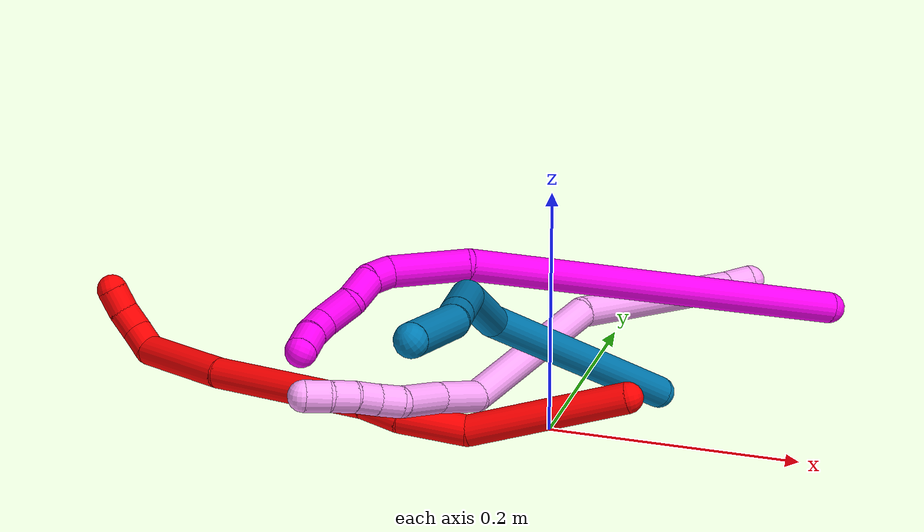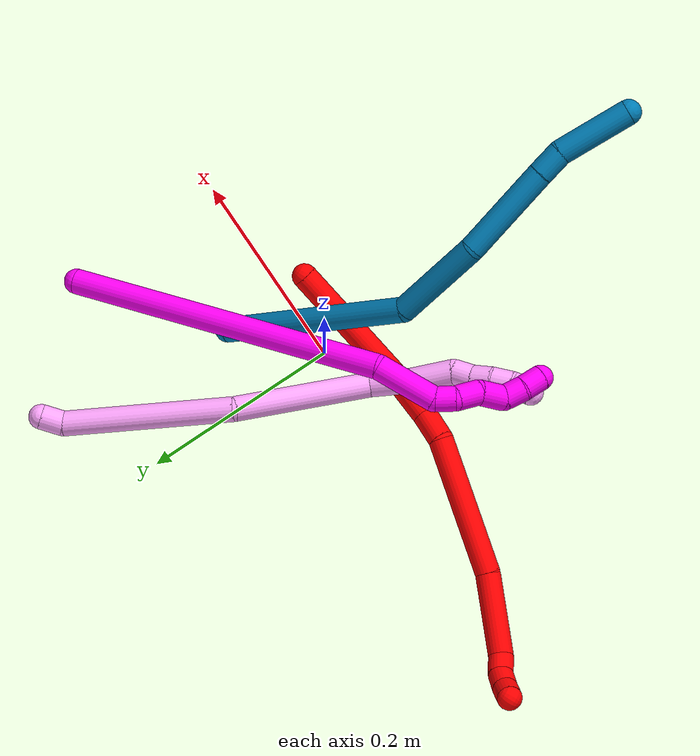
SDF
<sdf version="1.7">
 <world name="default">
  <model name="2">
   <static>0</static>
   <link name="2">
    <collision name="collision-cylinder-e_1_1_4">
     <pose>-0.016483 -0.006897 0.062198 0.110441 -0.257541 -0.014315</pose>
     <geometry><cylinder><radius>0.0125</radius><length>0.129426</length></cylinder></geometry>
     <surface>
      <friction><ode><mu>1.16</mu><mu2>1.16</mu2><slip1>0</slip1><slip2>0</slip2></ode></friction>
      <contact><ode><kp>1e+06</kp><kd>1</kd><max_vel>0</max_vel><min_depth>0.001</min_depth></ode></contact>
     </surface>
    </collision>
    <visual name="visual-cylinder-e_1_1_4">
     <pose>-0.016483 -0.006897 0.062198 0.110441 -0.257541 -0.014315</pose>
     <geometry><cylinder><radius>0.0125</radius><length>0.129426</length></cylinder></geometry>
     <material><ambient>1 0 0 1</ambient></material>
    </visual>
    <collision name="collision-cylinder-e_2_4_5">
     <pose>-0.044584 -0.007371 0.148681 -0.258587 -0.43321 0.057208</pose>
     <geometry><cylinder><radius>0.0125</radius><length>0.055356</length></cylinder></geometry>
     <surface>
      <friction><ode><mu>1.16</mu><mu2>1.16</mu2><slip1>0</slip1><slip2>0</slip2></ode></friction>
      <contact><ode><kp>1e+06</kp><kd>1</kd><max_vel>0</max_vel><min_depth>0.001</min_depth></ode></contact>
     </surface>
    </collision>
    <visual name="visual-cylinder-e_2_4_5">
     <pose>-0.044584 -0.007371 0.148681 -0.258587 -0.43321 0.057208</pose>
     <geometry><cylinder><radius>0.0125</radius><length>0.055356</length></cylinder></geometry>
     <material><ambient>1 0 0 1</ambient></material>
    </visual>
    <collision name="collision-cylinder-e_3_5_6">
     <pose>-0.064183 0.004507 0.185072 -0.423331 -0.541164 0.11907</pose>
     <geometry><cylinder><radius>0.0125</radius><length>0.03098</length></cylinder></geometry>
     <surface>
      <friction><ode><mu>1.16</mu><mu2>1.16</mu2><slip1>0</slip1><slip2>0</slip2></ode></friction>
      <contact><ode><kp>1e+06</kp><kd>1</kd><max_vel>0</max_vel><min_depth>0.001</min_depth></ode></contact>
     </surface>
    </collision>
    <visual name="visual-cylinder-e_3_5_6">
     <pose>-0.064183 0.004507 0.185072 -0.423331 -0.541164 0.11907</pose>
     <geometry><cylinder><radius>0.0125</radius><length>0.03098</length></cylinder></geometry>
     <material><ambient>1 0 0 1</ambient></material>
    </visual>
    <collision name="collision-cylinder-e_4_6_7">
     <pose>-0.118391 0.012034 0.249811 -0.039355 -0.720318 0.014822</pose>
     <geometry><cylinder><radius>0.0125</radius><length>0.140169</length></cylinder></geometry>
     <surface>
      <friction><ode><mu>1.16</mu><mu2>1.16</mu2><slip1>0</slip1><slip2>0</slip2></ode></friction>
      <contact><ode><kp>1e+06</kp><kd>1</kd><max_vel>0</max_vel><min_depth>0.001</min_depth></ode></contact>
     </surface>
    </collision>
    <visual name="visual-cylinder-e_4_6_7">
     <pose>-0.118391 0.012034 0.249811 -0.039355 -0.720318 0.014822</pose>
     <geometry><cylinder><radius>0.0125</radius><length>0.140169</length></cylinder></geometry>
     <material><ambient>1 0 0 1</ambient></material>
    </visual>
    <collision name="collision-cylinder-e_5_7_8">
     <pose>-0.196631 0.013745 0.328034 0.014114 -0.896392 -0.006786</pose>
     <geometry><cylinder><radius>0.0125</radius><length>0.081964</length></cylinder></geometry>
     <surface>
      <friction><ode><mu>1.16</mu><mu2>1.16</mu2><slip1>0</slip1><slip2>0</slip2></ode></friction>
      <contact><ode><kp>1e+06</kp><kd>1</kd><max_vel>0</max_vel><min_depth>0.001</min_depth></ode></contact>
     </surface>
    </collision>
    <visual name="visual-cylinder-e_5_7_8">
     <pose>-0.196631 0.013745 0.328034 0.014114 -0.896392 -0.006786</pose>
     <geometry><cylinder><radius>0.0125</radius><length>0.081964</length></cylinder></geometry>
     <material><ambient>1 0 0 1</ambient></material>
    </visual>
    <collision name="collision-cylinder-e_6_8_9">
     <pose>-0.237722 0.018271 0.356886 -0.981888 -0.99644 0.566027</pose>
     <geometry><cylinder><radius>0.0125</radius><length>0.021633</length></cylinder></geometry>
     <surface>
      <friction><ode><mu>1.16</mu><mu2>1.16</mu2><slip1>0</slip1><slip2>0</slip2></ode></friction>
      <contact><ode><kp>1e+06</kp><kd>1</kd><max_vel>0</max_vel><min_depth>0.001</min_depth></ode></contact>
     </surface>
    </collision>
    <visual name="visual-cylinder-e_6_8_9">
     <pose>-0.237722 0.018271 0.356886 -0.981888 -0.99644 0.566027</pose>
     <geometry><cylinder><radius>0.0125</radius><length>0.021633</length></cylinder></geometry>
     <material><ambient>1 0 0 1</ambient></material>
    </visual>
    <collision name="collision-cylinder-e_7_9_10">
     <pose>-0.252983 0.030297 0.363691 -1.11041 -0.659582 0.418428</pose>
     <geometry><cylinder><radius>0.0125</radius><length>0.02017</length></cylinder></geometry>
     <surface>
      <friction><ode><mu>1.16</mu><mu2>1.16</mu2><slip1>0</slip1><slip2>0</slip2></ode></friction>
      <contact><ode><kp>1e+06</kp><kd>1</kd><max_vel>0</max_vel><min_depth>0.001</min_depth></ode></contact>
     </surface>
    </collision>
    <visual name="visual-cylinder-e_7_9_10">
     <pose>-0.252983 0.030297 0.363691 -1.11041 -0.659582 0.418428</pose>
     <geometry><cylinder><radius>0.0125</radius><length>0.02017</length></cylinder></geometry>
     <material><ambient>1 0 0 1</ambient></material>
    </visual>
    <collision name="collision-cylinder-e_8_10_2">
     <pose>-0.263932 0.046089 0.369563 -1.3076 -0.489087 0.37784</pose>
     <geometry><cylinder><radius>0.0125</radius><length>0.020302</length></cylinder></geometry>
     <surface>
      <friction><ode><mu>1.16</mu><mu2>1.16</mu2><slip1>0</slip1><slip2>0</slip2></ode></friction>
      <contact><ode><kp>1e+06</kp><kd>1</kd><max_vel>0</max_vel><min_depth>0.001</min_depth></ode></contact>
     </surface>
    </collision>
    <visual name="visual-cylinder-e_8_10_2">
     <pose>-0.263932 0.046089 0.369563 -1.3076 -0.489087 0.37784</pose>
     <geometry><cylinder><radius>0.0125</radius><length>0.020302</length></cylinder></geometry>
     <material><ambient>1 0 0 1</ambient></material>
    </visual>
    <collision name="collision-sphere-2">
     <pose>-0.268701 0.054741 0.371894 0 -0 0</pose>
     <geometry><sphere><radius>0.0125</radius></sphere></geometry>
     <surface>
      <friction><ode><mu>1.16</mu><mu2>1.16</mu2><slip1>0</slip1><slip2>0</slip2></ode></friction>
      <contact><ode><kp>1e+06</kp><kd>1</kd><max_vel>0</max_vel><min_depth>0.001</min_depth></ode></contact>
     </surface>
    </collision>
    <visual name="visual-sphere-2">
     <pose>-0.268701 0.054741 0.371894 0 -0 0</pose>
     <geometry><sphere><radius>0.0125</radius></sphere></geometry>
     <material><ambient>1 0 0 1</ambient></material>
    </visual>
    <collision name="collision-sphere-10">
     <pose>-0.259163 0.037437 0.367231 0 -0 0</pose>
     <geometry><sphere><radius>0.0125</radius></sphere></geometry>
     <surface>
      <friction><ode><mu>1.16</mu><mu2>1.16</mu2><slip1>0</slip1><slip2>0</slip2></ode></friction>
      <contact><ode><kp>1e+06</kp><kd>1</kd><max_vel>0</max_vel><min_depth>0.001</min_depth></ode></contact>
     </surface>
    </collision>
    <visual name="visual-sphere-10">
     <pose>-0.259163 0.037437 0.367231 0 -0 0</pose>
     <geometry><sphere><radius>0.0125</radius></sphere></geometry>
     <material><ambient>1 0 0 1</ambient></material>
    </visual>
    <collision name="collision-sphere-9">
     <pose>-0.246803 0.023157 0.36015 0 -0 0</pose>
     <geometry><sphere><radius>0.0125</radius></sphere></geometry>
     <surface>
      <friction><ode><mu>1.16</mu><mu2>1.16</mu2><slip1>0</slip1><slip2>0</slip2></ode></friction>
      <contact><ode><kp>1e+06</kp><kd>1</kd><max_vel>0</max_vel><min_depth>0.001</min_depth></ode></contact>
     </surface>
    </collision>
    <visual name="visual-sphere-9">
     <pose>-0.246803 0.023157 0.36015 0 -0 0</pose>
     <geometry><sphere><radius>0.0125</radius></sphere></geometry>
     <material><ambient>1 0 0 1</ambient></material>
    </visual>
    <collision name="collision-sphere-4">
     <pose>-0.032965 -0.013794 0.124395 0 -0 0</pose>
     <geometry><sphere><radius>0.0125</radius></sphere></geometry>
     <surface>
      <friction><ode><mu>1.16</mu><mu2>1.16</mu2><slip1>0</slip1><slip2>0</slip2></ode></friction>
      <contact><ode><kp>1e+06</kp><kd>1</kd><max_vel>0</max_vel><min_depth>0.001</min_depth></ode></contact>
     </surface>
    </collision>
    <visual name="visual-sphere-4">
     <pose>-0.032965 -0.013794 0.124395 0 -0 0</pose>
     <geometry><sphere><radius>0.0125</radius></sphere></geometry>
     <material><ambient>1 0 0 1</ambient></material>
    </visual>
    <collision name="collision-sphere-1">
     <geometry><sphere><radius>0.0125</radius></sphere></geometry>
     <surface>
      <friction><ode><mu>1.16</mu><mu2>1.16</mu2><slip1>0</slip1><slip2>0</slip2></ode></friction>
      <contact><ode><kp>1e+06</kp><kd>1</kd><max_vel>0</max_vel><min_depth>0.001</min_depth></ode></contact>
     </surface>
    </collision>
    <visual name="visual-sphere-1">
     <geometry><sphere><radius>0.0125</radius></sphere></geometry>
     <material><ambient>1 0 0 1</ambient></material>
    </visual>
    <collision name="collision-sphere-8">
     <pose>-0.228641 0.013384 0.353621 0 -0 0</pose>
     <geometry><sphere><radius>0.0125</radius></sphere></geometry>
     <surface>
      <friction><ode><mu>1.16</mu><mu2>1.16</mu2><slip1>0</slip1><slip2>0</slip2></ode></friction>
      <contact><ode><kp>1e+06</kp><kd>1</kd><max_vel>0</max_vel><min_depth>0.001</min_depth></ode></contact>
     </surface>
    </collision>
    <visual name="visual-sphere-8">
     <pose>-0.228641 0.013384 0.353621 0 -0 0</pose>
     <geometry><sphere><radius>0.0125</radius></sphere></geometry>
     <material><ambient>1 0 0 1</ambient></material>
    </visual>
    <collision name="collision-sphere-5">
     <pose>-0.056203 -0.000947 0.172967 0 -0 0</pose>
     <geometry><sphere><radius>0.0125</radius></sphere></geometry>
     <surface>
      <friction><ode><mu>1.16</mu><mu2>1.16</mu2><slip1>0</slip1><slip2>0</slip2></ode></friction>
      <contact><ode><kp>1e+06</kp><kd>1</kd><max_vel>0</max_vel><min_depth>0.001</min_depth></ode></contact>
     </surface>
    </collision>
    <visual name="visual-sphere-5">
     <pose>-0.056203 -0.000947 0.172967 0 -0 0</pose>
     <geometry><sphere><radius>0.0125</radius></sphere></geometry>
     <material><ambient>1 0 0 1</ambient></material>
    </visual>
    <collision name="collision-sphere-6">
     <pose>-0.072162 0.009961 0.197177 0 -0 0</pose>
     <geometry><sphere><radius>0.0125</radius></sphere></geometry>
     <surface>
      <friction><ode><mu>1.16</mu><mu2>1.16</mu2><slip1>0</slip1><slip2>0</slip2></ode></friction>
      <contact><ode><kp>1e+06</kp><kd>1</kd><max_vel>0</max_vel><min_depth>0.001</min_depth></ode></contact>
     </surface>
    </collision>
    <visual name="visual-sphere-6">
     <pose>-0.072162 0.009961 0.197177 0 -0 0</pose>
     <geometry><sphere><radius>0.0125</radius></sphere></geometry>
     <material><ambient>1 0 0 1</ambient></material>
    </visual>
    <collision name="collision-sphere-7">
     <pose>-0.164621 0.014106 0.302446 0 -0 0</pose>
     <geometry><sphere><radius>0.0125</radius></sphere></geometry>
     <surface>
      <friction><ode><mu>1.16</mu><mu2>1.16</mu2><slip1>0</slip1><slip2>0</slip2></ode></friction>
      <contact><ode><kp>1e+06</kp><kd>1</kd><max_vel>0</max_vel><min_depth>0.001</min_depth></ode></contact>
     </surface>
    </collision>
    <visual name="visual-sphere-7">
     <pose>-0.164621 0.014106 0.302446 0 -0 0</pose>
     <geometry><sphere><radius>0.0125</radius></sphere></geometry>
     <material><ambient>1 0 0 1</ambient></material>
    </visual>
    <inertial>
     <pose>-0.109809 0.007189 0.212951 0 -0 0</pose>
     <mass>0.5</mass>
     <inertia>
      <ixx>0.000389</ixx>
      <ixy>0</ixy>
      <ixz>0</ixz>
      <iyy>0.000498</iyy>
      <iyz>0</iyz>
      <izz>0.000287</izz>
     </inertia>
    </inertial>
   </link>
   <pose>0.068594 -0.022581 0.046968 1.78169 0.114303 -1.09341</pose>
  </model>
  <model name="4">
   <static>0</static>
   <link name="4">
    <collision name="collision-cylinder-e_1_1_4">
     <pose>-0.008447 -0.007774 -0.001561 1.76897 -0.816992 -0.972222</pose>
     <geometry><cylinder><radius>0.0125</radius><length>0.02317</length></cylinder></geometry>
     <surface>
      <friction><ode><mu>1.16</mu><mu2>1.16</mu2><slip1>0</slip1><slip2>0</slip2></ode></friction>
      <contact><ode><kp>1e+06</kp><kd>1</kd><max_vel>0</max_vel><min_depth>0.001</min_depth></ode></contact>
     </surface>
    </collision>
    <visual name="visual-cylinder-e_1_1_4">
     <pose>-0.008447 -0.007774 -0.001561 1.76897 -0.816992 -0.972222</pose>
     <geometry><cylinder><radius>0.0125</radius><length>0.02317</length></cylinder></geometry>
     <material><ambient>1 0.65098 0.996078 1</ambient></material>
    </visual>
    <collision name="collision-cylinder-e_2_4_5">
     <pose>-0.055331 -0.091465 0.005545 1.45712 -0.46608 -0.417423</pose>
     <geometry><cylinder><radius>0.0125</radius><length>0.171068</length></cylinder></geometry>
     <surface>
      <friction><ode><mu>1.16</mu><mu2>1.16</mu2><slip1>0</slip1><slip2>0</slip2></ode></friction>
      <contact><ode><kp>1e+06</kp><kd>1</kd><max_vel>0</max_vel><min_depth>0.001</min_depth></ode></contact>
     </surface>
    </collision>
    <visual name="visual-cylinder-e_2_4_5">
     <pose>-0.055331 -0.091465 0.005545 1.45712 -0.46608 -0.417423</pose>
     <geometry><cylinder><radius>0.0125</radius><length>0.171068</length></cylinder></geometry>
     <material><ambient>1 0.65098 0.996078 1</ambient></material>
    </visual>
    <collision name="collision-cylinder-e_3_5_6">
     <pose>-0.115155 -0.23129 -0.002448 1.82581 -0.313157 -0.403059</pose>
     <geometry><cylinder><radius>0.0125</radius><length>0.138839</length></cylinder></geometry>
     <surface>
      <friction><ode><mu>1.16</mu><mu2>1.16</mu2><slip1>0</slip1><slip2>0</slip2></ode></friction>
      <contact><ode><kp>1e+06</kp><kd>1</kd><max_vel>0</max_vel><min_depth>0.001</min_depth></ode></contact>
     </surface>
    </collision>
    <visual name="visual-cylinder-e_3_5_6">
     <pose>-0.115155 -0.23129 -0.002448 1.82581 -0.313157 -0.403059</pose>
     <geometry><cylinder><radius>0.0125</radius><length>0.138839</length></cylinder></geometry>
     <material><ambient>1 0.65098 0.996078 1</ambient></material>
    </visual>
    <collision name="collision-cylinder-e_4_6_7">
     <pose>-0.146022 -0.313534 -0.014425 1.32074 -0.464475 -0.363335</pose>
     <geometry><cylinder><radius>0.0125</radius><length>0.042335</length></cylinder></geometry>
     <surface>
      <friction><ode><mu>1.16</mu><mu2>1.16</mu2><slip1>0</slip1><slip2>0</slip2></ode></friction>
      <contact><ode><kp>1e+06</kp><kd>1</kd><max_vel>0</max_vel><min_depth>0.001</min_depth></ode></contact>
     </surface>
    </collision>
    <visual name="visual-cylinder-e_4_6_7">
     <pose>-0.146022 -0.313534 -0.014425 1.32074 -0.464475 -0.363335</pose>
     <geometry><cylinder><radius>0.0125</radius><length>0.042335</length></cylinder></geometry>
     <material><ambient>1 0.65098 0.996078 1</ambient></material>
    </visual>
    <collision name="collision-cylinder-e_5_7_8">
     <pose>-0.162987 -0.351831 -0.005355 1.35447 -0.350977 -0.283245</pose>
     <geometry><cylinder><radius>0.0125</radius><length>0.043526</length></cylinder></geometry>
     <surface>
      <friction><ode><mu>1.16</mu><mu2>1.16</mu2><slip1>0</slip1><slip2>0</slip2></ode></friction>
      <contact><ode><kp>1e+06</kp><kd>1</kd><max_vel>0</max_vel><min_depth>0.001</min_depth></ode></contact>
     </surface>
    </collision>
    <visual name="visual-cylinder-e_5_7_8">
     <pose>-0.162987 -0.351831 -0.005355 1.35447 -0.350977 -0.283245</pose>
     <geometry><cylinder><radius>0.0125</radius><length>0.043526</length></cylinder></geometry>
     <material><ambient>1 0.65098 0.996078 1</ambient></material>
    </visual>
    <collision name="collision-cylinder-e_6_8_9">
     <pose>-0.178042 -0.378138 0.001066 1.26057 -0.848965 -0.637005</pose>
     <geometry><cylinder><radius>0.0125</radius><length>0.020177</length></cylinder></geometry>
     <surface>
      <friction><ode><mu>1.16</mu><mu2>1.16</mu2><slip1>0</slip1><slip2>0</slip2></ode></friction>
      <contact><ode><kp>1e+06</kp><kd>1</kd><max_vel>0</max_vel><min_depth>0.001</min_depth></ode></contact>
     </surface>
    </collision>
    <visual name="visual-cylinder-e_6_8_9">
     <pose>-0.178042 -0.378138 0.001066 1.26057 -0.848965 -0.637005</pose>
     <geometry><cylinder><radius>0.0125</radius><length>0.020177</length></cylinder></geometry>
     <material><ambient>1 0.65098 0.996078 1</ambient></material>
    </visual>
    <collision name="collision-cylinder-e_7_9_10">
     <pose>-0.191705 -0.39204 0.006067 1.19668 -0.643818 -0.447108</pose>
     <geometry><cylinder><radius>0.0125</radius><length>0.020294</length></cylinder></geometry>
     <surface>
      <friction><ode><mu>1.16</mu><mu2>1.16</mu2><slip1>0</slip1><slip2>0</slip2></ode></friction>
      <contact><ode><kp>1e+06</kp><kd>1</kd><max_vel>0</max_vel><min_depth>0.001</min_depth></ode></contact>
     </surface>
    </collision>
    <visual name="visual-cylinder-e_7_9_10">
     <pose>-0.191705 -0.39204 0.006067 1.19668 -0.643818 -0.447108</pose>
     <geometry><cylinder><radius>0.0125</radius><length>0.020294</length></cylinder></geometry>
     <material><ambient>1 0.65098 0.996078 1</ambient></material>
    </visual>
    <collision name="collision-cylinder-e_8_10_11">
     <pose>-0.204995 -0.406728 0.01073 1.33724 -0.776302 -0.624902</pose>
     <geometry><cylinder><radius>0.0125</radius><length>0.020552</length></cylinder></geometry>
     <surface>
      <friction><ode><mu>1.16</mu><mu2>1.16</mu2><slip1>0</slip1><slip2>0</slip2></ode></friction>
      <contact><ode><kp>1e+06</kp><kd>1</kd><max_vel>0</max_vel><min_depth>0.001</min_depth></ode></contact>
     </surface>
    </collision>
    <visual name="visual-cylinder-e_8_10_11">
     <pose>-0.204995 -0.406728 0.01073 1.33724 -0.776302 -0.624902</pose>
     <geometry><cylinder><radius>0.0125</radius><length>0.020552</length></cylinder></geometry>
     <material><ambient>1 0.65098 0.996078 1</ambient></material>
    </visual>
    <collision name="collision-cylinder-e_9_11_2">
     <pose>-0.22062 -0.419238 0.01313 1.44077 -0.998879 -0.893217</pose>
     <geometry><cylinder><radius>0.0125</radius><length>0.020039</length></cylinder></geometry>
     <surface>
      <friction><ode><mu>1.16</mu><mu2>1.16</mu2><slip1>0</slip1><slip2>0</slip2></ode></friction>
      <contact><ode><kp>1e+06</kp><kd>1</kd><max_vel>0</max_vel><min_depth>0.001</min_depth></ode></contact>
     </surface>
    </collision>
    <visual name="visual-cylinder-e_9_11_2">
     <pose>-0.22062 -0.419238 0.01313 1.44077 -0.998879 -0.893217</pose>
     <geometry><cylinder><radius>0.0125</radius><length>0.020039</length></cylinder></geometry>
     <material><ambient>1 0.65098 0.996078 1</ambient></material>
    </visual>
    <collision name="collision-sphere-2">
     <pose>-0.229045 -0.424615 0.013833 0 -0 0</pose>
     <geometry><sphere><radius>0.0125</radius></sphere></geometry>
     <surface>
      <friction><ode><mu>1.16</mu><mu2>1.16</mu2><slip1>0</slip1><slip2>0</slip2></ode></friction>
      <contact><ode><kp>1e+06</kp><kd>1</kd><max_vel>0</max_vel><min_depth>0.001</min_depth></ode></contact>
     </surface>
    </collision>
    <visual name="visual-sphere-2">
     <pose>-0.229045 -0.424615 0.013833 0 -0 0</pose>
     <geometry><sphere><radius>0.0125</radius></sphere></geometry>
     <material><ambient>1 0.65098 0.996078 1</ambient></material>
    </visual>
    <collision name="collision-sphere-11">
     <pose>-0.212195 -0.41386 0.012427 0 -0 0</pose>
     <geometry><sphere><radius>0.0125</radius></sphere></geometry>
     <surface>
      <friction><ode><mu>1.16</mu><mu2>1.16</mu2><slip1>0</slip1><slip2>0</slip2></ode></friction>
      <contact><ode><kp>1e+06</kp><kd>1</kd><max_vel>0</max_vel><min_depth>0.001</min_depth></ode></contact>
     </surface>
    </collision>
    <visual name="visual-sphere-11">
     <pose>-0.212195 -0.41386 0.012427 0 -0 0</pose>
     <geometry><sphere><radius>0.0125</radius></sphere></geometry>
     <material><ambient>1 0.65098 0.996078 1</ambient></material>
    </visual>
    <collision name="collision-sphere-10">
     <pose>-0.197795 -0.399595 0.009033 0 -0 0</pose>
     <geometry><sphere><radius>0.0125</radius></sphere></geometry>
     <surface>
      <friction><ode><mu>1.16</mu><mu2>1.16</mu2><slip1>0</slip1><slip2>0</slip2></ode></friction>
      <contact><ode><kp>1e+06</kp><kd>1</kd><max_vel>0</max_vel><min_depth>0.001</min_depth></ode></contact>
     </surface>
    </collision>
    <visual name="visual-sphere-10">
     <pose>-0.197795 -0.399595 0.009033 0 -0 0</pose>
     <geometry><sphere><radius>0.0125</radius></sphere></geometry>
     <material><ambient>1 0.65098 0.996078 1</ambient></material>
    </visual>
    <collision name="collision-sphere-9">
     <pose>-0.185614 -0.384486 0.003101 0 -0 0</pose>
     <geometry><sphere><radius>0.0125</radius></sphere></geometry>
     <surface>
      <friction><ode><mu>1.16</mu><mu2>1.16</mu2><slip1>0</slip1><slip2>0</slip2></ode></friction>
      <contact><ode><kp>1e+06</kp><kd>1</kd><max_vel>0</max_vel><min_depth>0.001</min_depth></ode></contact>
     </surface>
    </collision>
    <visual name="visual-sphere-9">
     <pose>-0.185614 -0.384486 0.003101 0 -0 0</pose>
     <geometry><sphere><radius>0.0125</radius></sphere></geometry>
     <material><ambient>1 0.65098 0.996078 1</ambient></material>
    </visual>
    <collision name="collision-sphere-4">
     <pose>-0.016893 -0.015548 -0.003122 0 -0 0</pose>
     <geometry><sphere><radius>0.0125</radius></sphere></geometry>
     <surface>
      <friction><ode><mu>1.16</mu><mu2>1.16</mu2><slip1>0</slip1><slip2>0</slip2></ode></friction>
      <contact><ode><kp>1e+06</kp><kd>1</kd><max_vel>0</max_vel><min_depth>0.001</min_depth></ode></contact>
     </surface>
    </collision>
    <visual name="visual-sphere-4">
     <pose>-0.016893 -0.015548 -0.003122 0 -0 0</pose>
     <geometry><sphere><radius>0.0125</radius></sphere></geometry>
     <material><ambient>1 0.65098 0.996078 1</ambient></material>
    </visual>
    <collision name="collision-sphere-1">
     <geometry><sphere><radius>0.0125</radius></sphere></geometry>
     <surface>
      <friction><ode><mu>1.16</mu><mu2>1.16</mu2><slip1>0</slip1><slip2>0</slip2></ode></friction>
      <contact><ode><kp>1e+06</kp><kd>1</kd><max_vel>0</max_vel><min_depth>0.001</min_depth></ode></contact>
     </surface>
    </collision>
    <visual name="visual-sphere-1">
     <geometry><sphere><radius>0.0125</radius></sphere></geometry>
     <material><ambient>1 0.65098 0.996078 1</ambient></material>
    </visual>
    <collision name="collision-sphere-8">
     <pose>-0.170469 -0.371791 -0.000969 0 -0 0</pose>
     <geometry><sphere><radius>0.0125</radius></sphere></geometry>
     <surface>
      <friction><ode><mu>1.16</mu><mu2>1.16</mu2><slip1>0</slip1><slip2>0</slip2></ode></friction>
      <contact><ode><kp>1e+06</kp><kd>1</kd><max_vel>0</max_vel><min_depth>0.001</min_depth></ode></contact>
     </surface>
    </collision>
    <visual name="visual-sphere-8">
     <pose>-0.170469 -0.371791 -0.000969 0 -0 0</pose>
     <geometry><sphere><radius>0.0125</radius></sphere></geometry>
     <material><ambient>1 0.65098 0.996078 1</ambient></material>
    </visual>
    <collision name="collision-sphere-5">
     <pose>-0.093769 -0.167382 0.014213 0 -0 0</pose>
     <geometry><sphere><radius>0.0125</radius></sphere></geometry>
     <surface>
      <friction><ode><mu>1.16</mu><mu2>1.16</mu2><slip1>0</slip1><slip2>0</slip2></ode></friction>
      <contact><ode><kp>1e+06</kp><kd>1</kd><max_vel>0</max_vel><min_depth>0.001</min_depth></ode></contact>
     </surface>
    </collision>
    <visual name="visual-sphere-5">
     <pose>-0.093769 -0.167382 0.014213 0 -0 0</pose>
     <geometry><sphere><radius>0.0125</radius></sphere></geometry>
     <material><ambient>1 0.65098 0.996078 1</ambient></material>
    </visual>
    <collision name="collision-sphere-6">
     <pose>-0.13654 -0.295198 -0.019108 0 -0 0</pose>
     <geometry><sphere><radius>0.0125</radius></sphere></geometry>
     <surface>
      <friction><ode><mu>1.16</mu><mu2>1.16</mu2><slip1>0</slip1><slip2>0</slip2></ode></friction>
      <contact><ode><kp>1e+06</kp><kd>1</kd><max_vel>0</max_vel><min_depth>0.001</min_depth></ode></contact>
     </surface>
    </collision>
    <visual name="visual-sphere-6">
     <pose>-0.13654 -0.295198 -0.019108 0 -0 0</pose>
     <geometry><sphere><radius>0.0125</radius></sphere></geometry>
     <material><ambient>1 0.65098 0.996078 1</ambient></material>
    </visual>
    <collision name="collision-sphere-7">
     <pose>-0.155504 -0.331871 -0.009742 0 -0 0</pose>
     <geometry><sphere><radius>0.0125</radius></sphere></geometry>
     <surface>
      <friction><ode><mu>1.16</mu><mu2>1.16</mu2><slip1>0</slip1><slip2>0</slip2></ode></friction>
      <contact><ode><kp>1e+06</kp><kd>1</kd><max_vel>0</max_vel><min_depth>0.001</min_depth></ode></contact>
     </surface>
    </collision>
    <visual name="visual-sphere-7">
     <pose>-0.155504 -0.331871 -0.009742 0 -0 0</pose>
     <geometry><sphere><radius>0.0125</radius></sphere></geometry>
     <material><ambient>1 0.65098 0.996078 1</ambient></material>
    </visual>
    <inertial>
     <pose>-0.110084 -0.217744 0.000714 0 -0 0</pose>
     <mass>0.5</mass>
     <inertia>
      <ixx>0.0003</ixx>
      <ixy>0</ixy>
      <ixz>0</ixz>
      <iyy>-0.000175</iyy>
      <iyz>0</iyz>
      <izz>0.000881</izz>
     </inertia>
    </inertial>
   </link>
   <pose>0.098621 0.270088 0.032062 -0.04929 0.010533 -0.058759</pose>
  </model>
  <model name="9">
   <static>0</static>
   <link name="9">
    <collision name="collision-cylinder-e_1_1_4">
     <pose>-0.02713 -0.026337 0.095143 0.270055 -0.268191 -0.036651</pose>
     <geometry><cylinder><radius>0.0125</radius><length>0.204762</length></cylinder></geometry>
     <surface>
      <friction><ode><mu>1.16</mu><mu2>1.16</mu2><slip1>0</slip1><slip2>0</slip2></ode></friction>
      <contact><ode><kp>1e+06</kp><kd>1</kd><max_vel>0</max_vel><min_depth>0.001</min_depth></ode></contact>
     </surface>
    </collision>
    <visual name="visual-cylinder-e_1_1_4">
     <pose>-0.02713 -0.026337 0.095143 0.270055 -0.268191 -0.036651</pose>
     <geometry><cylinder><radius>0.0125</radius><length>0.204762</length></cylinder></geometry>
     <material><ambient>0 0.490196 0.709804 1</ambient></material>
    </visual>
    <collision name="collision-cylinder-e_2_4_5">
     <pose>-0.047756 -0.08118 0.228558 0.64017 0.135447 0.04496</pose>
     <geometry><cylinder><radius>0.0125</radius><length>0.096325</length></cylinder></geometry>
     <surface>
      <friction><ode><mu>1.16</mu><mu2>1.16</mu2><slip1>0</slip1><slip2>0</slip2></ode></friction>
      <contact><ode><kp>1e+06</kp><kd>1</kd><max_vel>0</max_vel><min_depth>0.001</min_depth></ode></contact>
     </surface>
    </collision>
    <visual name="visual-cylinder-e_2_4_5">
     <pose>-0.047756 -0.08118 0.228558 0.64017 0.135447 0.04496</pose>
     <geometry><cylinder><radius>0.0125</radius><length>0.096325</length></cylinder></geometry>
     <material><ambient>0 0.490196 0.709804 1</ambient></material>
    </visual>
    <collision name="collision-cylinder-e_3_5_6">
     <pose>-0.037248 -0.149578 0.29361 0.979598 0.083158 0.044352</pose>
     <geometry><cylinder><radius>0.0125</radius><length>0.096428</length></cylinder></geometry>
     <surface>
      <friction><ode><mu>1.16</mu><mu2>1.16</mu2><slip1>0</slip1><slip2>0</slip2></ode></friction>
      <contact><ode><kp>1e+06</kp><kd>1</kd><max_vel>0</max_vel><min_depth>0.001</min_depth></ode></contact>
     </surface>
    </collision>
    <visual name="visual-cylinder-e_3_5_6">
     <pose>-0.037248 -0.149578 0.29361 0.979598 0.083158 0.044352</pose>
     <geometry><cylinder><radius>0.0125</radius><length>0.096428</length></cylinder></geometry>
     <material><ambient>0 0.490196 0.709804 1</ambient></material>
    </visual>
    <collision name="collision-cylinder-e_4_6_7">
     <pose>-0.032669 -0.201297 0.327668 1.01911 0.041269 0.023062</pose>
     <geometry><cylinder><radius>0.0125</radius><length>0.027797</length></cylinder></geometry>
     <surface>
      <friction><ode><mu>1.16</mu><mu2>1.16</mu2><slip1>0</slip1><slip2>0</slip2></ode></friction>
      <contact><ode><kp>1e+06</kp><kd>1</kd><max_vel>0</max_vel><min_depth>0.001</min_depth></ode></contact>
     </surface>
    </collision>
    <visual name="visual-cylinder-e_4_6_7">
     <pose>-0.032669 -0.201297 0.327668 1.01911 0.041269 0.023062</pose>
     <geometry><cylinder><radius>0.0125</radius><length>0.027797</length></cylinder></geometry>
     <material><ambient>0 0.490196 0.709804 1</ambient></material>
    </visual>
    <collision name="collision-cylinder-e_5_7_2">
     <pose>-0.039308 -0.240945 0.35879 0.862251 -0.194347 -0.089619</pose>
     <geometry><cylinder><radius>0.0125</radius><length>0.074688</length></cylinder></geometry>
     <surface>
      <friction><ode><mu>1.16</mu><mu2>1.16</mu2><slip1>0</slip1><slip2>0</slip2></ode></friction>
      <contact><ode><kp>1e+06</kp><kd>1</kd><max_vel>0</max_vel><min_depth>0.001</min_depth></ode></contact>
     </surface>
    </collision>
    <visual name="visual-cylinder-e_5_7_2">
     <pose>-0.039308 -0.240945 0.35879 0.862251 -0.194347 -0.089619</pose>
     <geometry><cylinder><radius>0.0125</radius><length>0.074688</length></cylinder></geometry>
     <material><ambient>0 0.490196 0.709804 1</ambient></material>
    </visual>
    <collision name="collision-sphere-2">
     <pose>-0.04652 -0.268767 0.382633 0 -0 0</pose>
     <geometry><sphere><radius>0.0125</radius></sphere></geometry>
     <surface>
      <friction><ode><mu>1.16</mu><mu2>1.16</mu2><slip1>0</slip1><slip2>0</slip2></ode></friction>
      <contact><ode><kp>1e+06</kp><kd>1</kd><max_vel>0</max_vel><min_depth>0.001</min_depth></ode></contact>
     </surface>
    </collision>
    <visual name="visual-sphere-2">
     <pose>-0.04652 -0.268767 0.382633 0 -0 0</pose>
     <geometry><sphere><radius>0.0125</radius></sphere></geometry>
     <material><ambient>0 0.490196 0.709804 1</ambient></material>
    </visual>
    <collision name="collision-sphere-7">
     <pose>-0.032096 -0.213123 0.334946 0 -0 0</pose>
     <geometry><sphere><radius>0.0125</radius></sphere></geometry>
     <surface>
      <friction><ode><mu>1.16</mu><mu2>1.16</mu2><slip1>0</slip1><slip2>0</slip2></ode></friction>
      <contact><ode><kp>1e+06</kp><kd>1</kd><max_vel>0</max_vel><min_depth>0.001</min_depth></ode></contact>
     </surface>
    </collision>
    <visual name="visual-sphere-7">
     <pose>-0.032096 -0.213123 0.334946 0 -0 0</pose>
     <geometry><sphere><radius>0.0125</radius></sphere></geometry>
     <material><ambient>0 0.490196 0.709804 1</ambient></material>
    </visual>
    <collision name="collision-sphere-6">
     <pose>-0.033243 -0.18947 0.32039 0 -0 0</pose>
     <geometry><sphere><radius>0.0125</radius></sphere></geometry>
     <surface>
      <friction><ode><mu>1.16</mu><mu2>1.16</mu2><slip1>0</slip1><slip2>0</slip2></ode></friction>
      <contact><ode><kp>1e+06</kp><kd>1</kd><max_vel>0</max_vel><min_depth>0.001</min_depth></ode></contact>
     </surface>
    </collision>
    <visual name="visual-sphere-6">
     <pose>-0.033243 -0.18947 0.32039 0 -0 0</pose>
     <geometry><sphere><radius>0.0125</radius></sphere></geometry>
     <material><ambient>0 0.490196 0.709804 1</ambient></material>
    </visual>
    <collision name="collision-sphere-5">
     <pose>-0.041252 -0.109685 0.266831 0 -0 0</pose>
     <geometry><sphere><radius>0.0125</radius></sphere></geometry>
     <surface>
      <friction><ode><mu>1.16</mu><mu2>1.16</mu2><slip1>0</slip1><slip2>0</slip2></ode></friction>
      <contact><ode><kp>1e+06</kp><kd>1</kd><max_vel>0</max_vel><min_depth>0.001</min_depth></ode></contact>
     </surface>
    </collision>
    <visual name="visual-sphere-5">
     <pose>-0.041252 -0.109685 0.266831 0 -0 0</pose>
     <geometry><sphere><radius>0.0125</radius></sphere></geometry>
     <material><ambient>0 0.490196 0.709804 1</ambient></material>
    </visual>
    <collision name="collision-sphere-1">
     <geometry><sphere><radius>0.0125</radius></sphere></geometry>
     <surface>
      <friction><ode><mu>1.16</mu><mu2>1.16</mu2><slip1>0</slip1><slip2>0</slip2></ode></friction>
      <contact><ode><kp>1e+06</kp><kd>1</kd><max_vel>0</max_vel><min_depth>0.001</min_depth></ode></contact>
     </surface>
    </collision>
    <visual name="visual-sphere-1">
     <geometry><sphere><radius>0.0125</radius></sphere></geometry>
     <material><ambient>0 0.490196 0.709804 1</ambient></material>
    </visual>
    <collision name="collision-sphere-4">
     <pose>-0.054259 -0.052674 0.190286 0 -0 0</pose>
     <geometry><sphere><radius>0.0125</radius></sphere></geometry>
     <surface>
      <friction><ode><mu>1.16</mu><mu2>1.16</mu2><slip1>0</slip1><slip2>0</slip2></ode></friction>
      <contact><ode><kp>1e+06</kp><kd>1</kd><max_vel>0</max_vel><min_depth>0.001</min_depth></ode></contact>
     </surface>
    </collision>
    <visual name="visual-sphere-4">
     <pose>-0.054259 -0.052674 0.190286 0 -0 0</pose>
     <geometry><sphere><radius>0.0125</radius></sphere></geometry>
     <material><ambient>0 0.490196 0.709804 1</ambient></material>
    </visual>
    <inertial>
     <pose>-0.035182 -0.102454 0.211431 0 -0 0</pose>
     <mass>0.5</mass>
     <inertia>
      <ixx>0.000867</ixx>
      <ixy>0</ixy>
      <ixz>0</ixz>
      <iyy>0.000789</iyy>
      <iyz>0</iyz>
      <izz>0.000539</izz>
     </inertia>
    </inertial>
   </link>
   <pose>0.071285 0.06762 0.012892 0.321362 -0.565971 0.295129</pose>
  </model>
  <model name="10">
   <static>0</static>
   <link name="10">
    <collision name="collision-cylinder-e_1_1_4">
     <pose>-0.052274 -0.017504 -0.151259 3.02639 -0.330693 -2.47613</pose>
     <geometry><cylinder><radius>0.0125</radius><length>0.321984</length></cylinder></geometry>
     <surface>
      <friction><ode><mu>1.16</mu><mu2>1.16</mu2><slip1>0</slip1><slip2>0</slip2></ode></friction>
      <contact><ode><kp>1e+06</kp><kd>1</kd><max_vel>0</max_vel><min_depth>0.001</min_depth></ode></contact>
     </surface>
    </collision>
    <visual name="visual-cylinder-e_1_1_4">
     <pose>-0.052274 -0.017504 -0.151259 3.02639 -0.330693 -2.47613</pose>
     <geometry><cylinder><radius>0.0125</radius><length>0.321984</length></cylinder></geometry>
     <material><ambient>1 0 0.964706 1</ambient></material>
    </visual>
    <collision name="collision-cylinder-e_2_4_5">
     <pose>-0.111267 -0.048571 -0.329513 2.67595 -0.218862 -0.867803</pose>
     <geometry><cylinder><radius>0.0125</radius><length>0.061898</length></cylinder></geometry>
     <surface>
      <friction><ode><mu>1.16</mu><mu2>1.16</mu2><slip1>0</slip1><slip2>0</slip2></ode></friction>
      <contact><ode><kp>1e+06</kp><kd>1</kd><max_vel>0</max_vel><min_depth>0.001</min_depth></ode></contact>
     </surface>
    </collision>
    <visual name="visual-cylinder-e_2_4_5">
     <pose>-0.111267 -0.048571 -0.329513 2.67595 -0.218862 -0.867803</pose>
     <geometry><cylinder><radius>0.0125</radius><length>0.061898</length></cylinder></geometry>
     <material><ambient>1 0 0.964706 1</ambient></material>
    </visual>
    <collision name="collision-cylinder-e_3_5_6">
     <pose>-0.125075 -0.064373 -0.363457 2.83021 -0.770643 -2.40312</pose>
     <geometry><cylinder><radius>0.0125</radius><length>0.020351</length></cylinder></geometry>
     <surface>
      <friction><ode><mu>1.16</mu><mu2>1.16</mu2><slip1>0</slip1><slip2>0</slip2></ode></friction>
      <contact><ode><kp>1e+06</kp><kd>1</kd><max_vel>0</max_vel><min_depth>0.001</min_depth></ode></contact>
     </surface>
    </collision>
    <visual name="visual-cylinder-e_3_5_6">
     <pose>-0.125075 -0.064373 -0.363457 2.83021 -0.770643 -2.40312</pose>
     <geometry><cylinder><radius>0.0125</radius><length>0.020351</length></cylinder></geometry>
     <material><ambient>1 0 0.964706 1</ambient></material>
    </visual>
    <collision name="collision-cylinder-e_4_6_7">
     <pose>-0.143367 -0.071141 -0.374625 2.32051 -1.06596 -1.87024</pose>
     <geometry><cylinder><radius>0.0125</radius><length>0.025602</length></cylinder></geometry>
     <surface>
      <friction><ode><mu>1.16</mu><mu2>1.16</mu2><slip1>0</slip1><slip2>0</slip2></ode></friction>
      <contact><ode><kp>1e+06</kp><kd>1</kd><max_vel>0</max_vel><min_depth>0.001</min_depth></ode></contact>
     </surface>
    </collision>
    <visual name="visual-cylinder-e_4_6_7">
     <pose>-0.143367 -0.071141 -0.374625 2.32051 -1.06596 -1.87024</pose>
     <geometry><cylinder><radius>0.0125</radius><length>0.025602</length></cylinder></geometry>
     <material><ambient>1 0 0.964706 1</ambient></material>
    </visual>
    <collision name="collision-cylinder-e_5_7_8">
     <pose>-0.1628 -0.084346 -0.385826 2.24854 -0.636433 -1.20529</pose>
     <geometry><cylinder><radius>0.0125</radius><length>0.027691</length></cylinder></geometry>
     <surface>
      <friction><ode><mu>1.16</mu><mu2>1.16</mu2><slip1>0</slip1><slip2>0</slip2></ode></friction>
      <contact><ode><kp>1e+06</kp><kd>1</kd><max_vel>0</max_vel><min_depth>0.001</min_depth></ode></contact>
     </surface>
    </collision>
    <visual name="visual-cylinder-e_5_7_8">
     <pose>-0.1628 -0.084346 -0.385826 2.24854 -0.636433 -1.20529</pose>
     <geometry><cylinder><radius>0.0125</radius><length>0.027691</length></cylinder></geometry>
     <material><ambient>1 0 0.964706 1</ambient></material>
    </visual>
    <collision name="collision-cylinder-e_6_8_9">
     <pose>-0.180904 -0.093429 -0.396748 3.03802 -1.18934 -2.98862</pose>
     <geometry><cylinder><radius>0.0125</radius><length>0.021281</length></cylinder></geometry>
     <surface>
      <friction><ode><mu>1.16</mu><mu2>1.16</mu2><slip1>0</slip1><slip2>0</slip2></ode></friction>
      <contact><ode><kp>1e+06</kp><kd>1</kd><max_vel>0</max_vel><min_depth>0.001</min_depth></ode></contact>
     </surface>
    </collision>
    <visual name="visual-cylinder-e_6_8_9">
     <pose>-0.180904 -0.093429 -0.396748 3.03802 -1.18934 -2.98862</pose>
     <geometry><cylinder><radius>0.0125</radius><length>0.021281</length></cylinder></geometry>
     <material><ambient>1 0 0.964706 1</ambient></material>
    </visual>
    <collision name="collision-cylinder-e_7_9_2">
     <pose>-0.201077 -0.094989 -0.402912 2.66437 -1.3322 -2.54128</pose>
     <geometry><cylinder><radius>0.0125</radius><length>0.021194</length></cylinder></geometry>
     <surface>
      <friction><ode><mu>1.16</mu><mu2>1.16</mu2><slip1>0</slip1><slip2>0</slip2></ode></friction>
      <contact><ode><kp>1e+06</kp><kd>1</kd><max_vel>0</max_vel><min_depth>0.001</min_depth></ode></contact>
     </surface>
    </collision>
    <visual name="visual-cylinder-e_7_9_2">
     <pose>-0.201077 -0.094989 -0.402912 2.66437 -1.3322 -2.54128</pose>
     <geometry><cylinder><radius>0.0125</radius><length>0.021194</length></cylinder></geometry>
     <material><ambient>1 0 0.964706 1</ambient></material>
    </visual>
    <collision name="collision-sphere-2">
     <pose>-0.211374 -0.096139 -0.405137 0 -0 0</pose>
     <geometry><sphere><radius>0.0125</radius></sphere></geometry>
     <surface>
      <friction><ode><mu>1.16</mu><mu2>1.16</mu2><slip1>0</slip1><slip2>0</slip2></ode></friction>
      <contact><ode><kp>1e+06</kp><kd>1</kd><max_vel>0</max_vel><min_depth>0.001</min_depth></ode></contact>
     </surface>
    </collision>
    <visual name="visual-sphere-2">
     <pose>-0.211374 -0.096139 -0.405137 0 -0 0</pose>
     <geometry><sphere><radius>0.0125</radius></sphere></geometry>
     <material><ambient>1 0 0.964706 1</ambient></material>
    </visual>
    <collision name="collision-sphere-9">
     <pose>-0.19078 -0.093839 -0.400688 0 -0 0</pose>
     <geometry><sphere><radius>0.0125</radius></sphere></geometry>
     <surface>
      <friction><ode><mu>1.16</mu><mu2>1.16</mu2><slip1>0</slip1><slip2>0</slip2></ode></friction>
      <contact><ode><kp>1e+06</kp><kd>1</kd><max_vel>0</max_vel><min_depth>0.001</min_depth></ode></contact>
     </surface>
    </collision>
    <visual name="visual-sphere-9">
     <pose>-0.19078 -0.093839 -0.400688 0 -0 0</pose>
     <geometry><sphere><radius>0.0125</radius></sphere></geometry>
     <material><ambient>1 0 0.964706 1</ambient></material>
    </visual>
    <collision name="collision-sphere-4">
     <pose>-0.104547 -0.035007 -0.302519 0 -0 0</pose>
     <geometry><sphere><radius>0.0125</radius></sphere></geometry>
     <surface>
      <friction><ode><mu>1.16</mu><mu2>1.16</mu2><slip1>0</slip1><slip2>0</slip2></ode></friction>
      <contact><ode><kp>1e+06</kp><kd>1</kd><max_vel>0</max_vel><min_depth>0.001</min_depth></ode></contact>
     </surface>
    </collision>
    <visual name="visual-sphere-4">
     <pose>-0.104547 -0.035007 -0.302519 0 -0 0</pose>
     <geometry><sphere><radius>0.0125</radius></sphere></geometry>
     <material><ambient>1 0 0.964706 1</ambient></material>
    </visual>
    <collision name="collision-sphere-1">
     <geometry><sphere><radius>0.0125</radius></sphere></geometry>
     <surface>
      <friction><ode><mu>1.16</mu><mu2>1.16</mu2><slip1>0</slip1><slip2>0</slip2></ode></friction>
      <contact><ode><kp>1e+06</kp><kd>1</kd><max_vel>0</max_vel><min_depth>0.001</min_depth></ode></contact>
     </surface>
    </collision>
    <visual name="visual-sphere-1">
     <geometry><sphere><radius>0.0125</radius></sphere></geometry>
     <material><ambient>1 0 0.964706 1</ambient></material>
    </visual>
    <collision name="collision-sphere-8">
     <pose>-0.171029 -0.09302 -0.392808 0 -0 0</pose>
     <geometry><sphere><radius>0.0125</radius></sphere></geometry>
     <surface>
      <friction><ode><mu>1.16</mu><mu2>1.16</mu2><slip1>0</slip1><slip2>0</slip2></ode></friction>
      <contact><ode><kp>1e+06</kp><kd>1</kd><max_vel>0</max_vel><min_depth>0.001</min_depth></ode></contact>
     </surface>
    </collision>
    <visual name="visual-sphere-8">
     <pose>-0.171029 -0.09302 -0.392808 0 -0 0</pose>
     <geometry><sphere><radius>0.0125</radius></sphere></geometry>
     <material><ambient>1 0 0.964706 1</ambient></material>
    </visual>
    <collision name="collision-sphere-5">
     <pose>-0.117987 -0.062136 -0.356507 0 -0 0</pose>
     <geometry><sphere><radius>0.0125</radius></sphere></geometry>
     <surface>
      <friction><ode><mu>1.16</mu><mu2>1.16</mu2><slip1>0</slip1><slip2>0</slip2></ode></friction>
      <contact><ode><kp>1e+06</kp><kd>1</kd><max_vel>0</max_vel><min_depth>0.001</min_depth></ode></contact>
     </surface>
    </collision>
    <visual name="visual-sphere-5">
     <pose>-0.117987 -0.062136 -0.356507 0 -0 0</pose>
     <geometry><sphere><radius>0.0125</radius></sphere></geometry>
     <material><ambient>1 0 0.964706 1</ambient></material>
    </visual>
    <collision name="collision-sphere-6">
     <pose>-0.132163 -0.066609 -0.370406 0 -0 0</pose>
     <geometry><sphere><radius>0.0125</radius></sphere></geometry>
     <surface>
      <friction><ode><mu>1.16</mu><mu2>1.16</mu2><slip1>0</slip1><slip2>0</slip2></ode></friction>
      <contact><ode><kp>1e+06</kp><kd>1</kd><max_vel>0</max_vel><min_depth>0.001</min_depth></ode></contact>
     </surface>
    </collision>
    <visual name="visual-sphere-6">
     <pose>-0.132163 -0.066609 -0.370406 0 -0 0</pose>
     <geometry><sphere><radius>0.0125</radius></sphere></geometry>
     <material><ambient>1 0 0.964706 1</ambient></material>
    </visual>
    <collision name="collision-sphere-7">
     <pose>-0.154572 -0.075672 -0.378844 0 -0 0</pose>
     <geometry><sphere><radius>0.0125</radius></sphere></geometry>
     <surface>
      <friction><ode><mu>1.16</mu><mu2>1.16</mu2><slip1>0</slip1><slip2>0</slip2></ode></friction>
      <contact><ode><kp>1e+06</kp><kd>1</kd><max_vel>0</max_vel><min_depth>0.001</min_depth></ode></contact>
     </surface>
    </collision>
    <visual name="visual-sphere-7">
     <pose>-0.154572 -0.075672 -0.378844 0 -0 0</pose>
     <geometry><sphere><radius>0.0125</radius></sphere></geometry>
     <material><ambient>1 0 0.964706 1</ambient></material>
    </visual>
    <inertial>
     <pose>-0.085108 -0.036222 -0.227507 0 -0 0</pose>
     <mass>0.5</mass>
     <inertia>
      <ixx>-0.003735</ixx>
      <ixy>0</ixy>
      <ixz>0</ixz>
      <iyy>0.000584</iyy>
      <iyz>0</iyz>
      <izz>0.001205</izz>
     </inertia>
    </inertial>
   </link>
   <pose>0.186938 0.167746 0.05989 2.05578 -0.237453 1.80555</pose>
  </model>
 </world>
</sdf>
